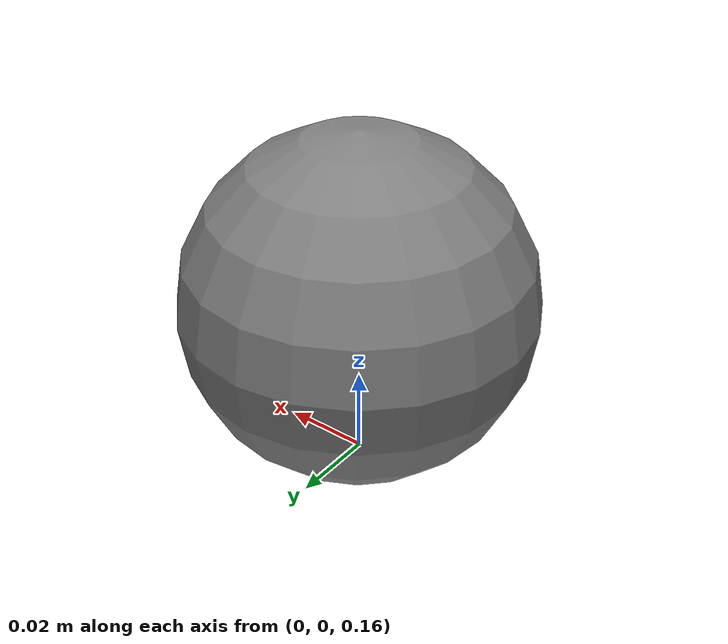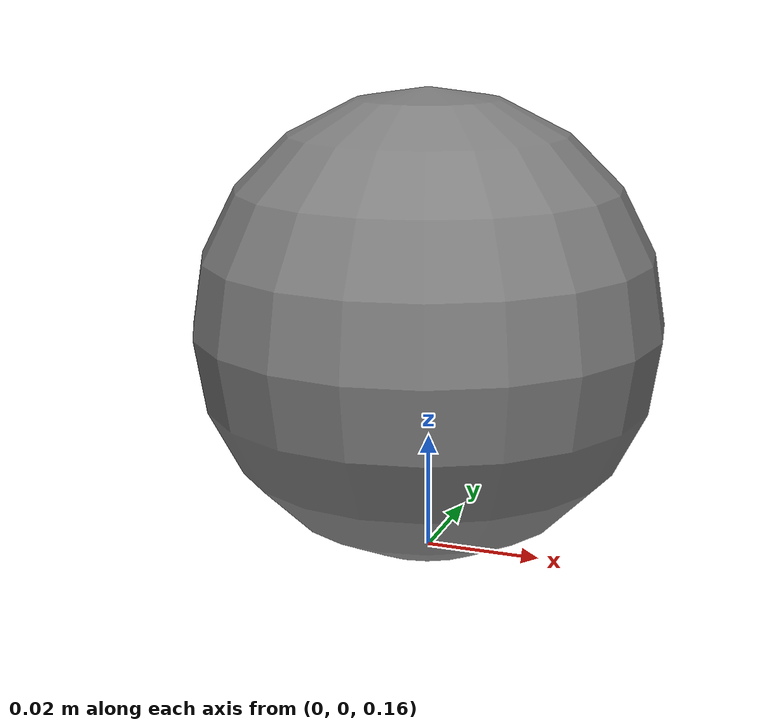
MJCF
<mujoco model="physicalrsi_slider_fixture">
  <option timestep="0.002" gravity="0 0 0" integrator="implicitfast"/>
  <worldbody>
    <body name="carriage" pos="0 0 0.2">
      <joint name="axis" type="slide" axis="1 0 0" range="-1 1" damping="0.5"/>
      <geom type="sphere" size="0.04" mass="1"/>
    </body>
  </worldbody>
  <actuator>
    <motor name="force" joint="axis" ctrllimited="true" ctrlrange="-10 10"/>
  </actuator>
</mujoco>
